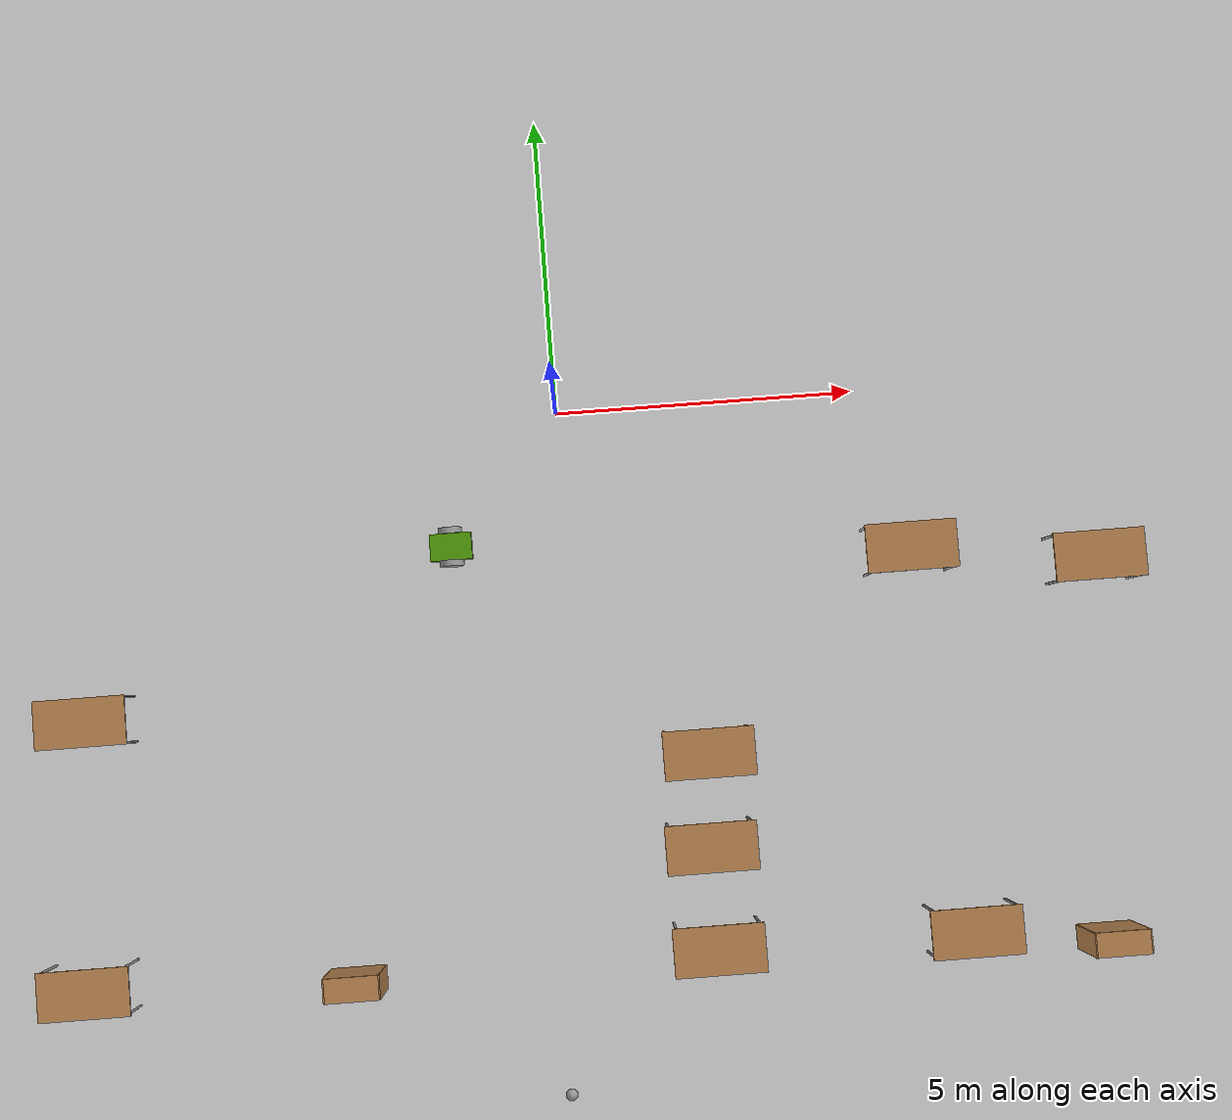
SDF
<sdf version="1.6">
 <world name="default">
  <model name="ground_plane">
   <static>1</static>
   <link name="link">
    <collision name="collision">
     <geometry><plane><normal>0 0 1</normal><size>100 100</size></plane></geometry>
     <surface>
      <contact><collide_bitmask>65535</collide_bitmask></contact>
      <friction><ode><mu>100</mu><mu2>50</mu2></ode></friction>
     </surface>
    </collision>
    <visual name="visual">
     <cast_shadows>0</cast_shadows>
     <geometry><plane><normal>0 0 1</normal><size>100 100</size></plane></geometry>
     <material>
      <script><uri>file://media/materials/scripts/gazebo.material</uri><name>Gazebo/Grey</name></script>
     </material>
    </visual>
   </link>
  </model>
  <model name="table">
   <static>1</static>
   <link name="link">
    <collision name="surface">
     <pose>0 0 1 0 -0 0</pose>
     <geometry><box><size>1.5 0.8 0.03</size></box></geometry>
     <surface><friction><ode><mu>0.6</mu><mu2>0.6</mu2></ode></friction></surface>
    </collision>
    <visual name="visual1">
     <pose>0 0 1 0 -0 0</pose>
     <geometry><box><size>1.5 0.8 0.03</size></box></geometry>
     <material>
      <script><uri>file://media/materials/scripts/gazebo.material</uri><name>Gazebo/Wood</name></script>
     </material>
    </visual>
    <collision name="front_left_leg">
     <pose>0.68 0.38 0.5 0 -0 0</pose>
     <geometry><cylinder><radius>0.02</radius><length>1</length></cylinder></geometry>
    </collision>
    <visual name="front_left_leg">
     <pose>0.68 0.38 0.5 0 -0 0</pose>
     <geometry><cylinder><radius>0.02</radius><length>1</length></cylinder></geometry>
     <material>
      <script><uri>file://media/materials/scripts/gazebo.material</uri><name>Gazebo/Grey</name></script>
     </material>
    </visual>
    <collision name="front_right_leg">
     <pose>0.68 -0.38 0.5 0 -0 0</pose>
     <geometry><cylinder><radius>0.02</radius><length>1</length></cylinder></geometry>
    </collision>
    <visual name="front_right_leg">
     <pose>0.68 -0.38 0.5 0 -0 0</pose>
     <geometry><cylinder><radius>0.02</radius><length>1</length></cylinder></geometry>
     <material>
      <script><uri>file://media/materials/scripts/gazebo.material</uri><name>Gazebo/Grey</name></script>
     </material>
    </visual>
    <collision name="back_right_leg">
     <pose>-0.68 -0.38 0.5 0 -0 0</pose>
     <geometry><cylinder><radius>0.02</radius><length>1</length></cylinder></geometry>
    </collision>
    <visual name="back_right_leg">
     <pose>-0.68 -0.38 0.5 0 -0 0</pose>
     <geometry><cylinder><radius>0.02</radius><length>1</length></cylinder></geometry>
     <material>
      <script><uri>file://media/materials/scripts/gazebo.material</uri><name>Gazebo/Grey</name></script>
     </material>
    </visual>
    <collision name="back_left_leg">
     <pose>-0.68 0.38 0.5 0 -0 0</pose>
     <geometry><cylinder><radius>0.02</radius><length>1</length></cylinder></geometry>
    </collision>
    <visual name="back_left_leg">
     <pose>-0.68 0.38 0.5 0 -0 0</pose>
     <geometry><cylinder><radius>0.02</radius><length>1</length></cylinder></geometry>
     <material>
      <script><uri>file://media/materials/scripts/gazebo.material</uri><name>Gazebo/Grey</name></script>
     </material>
    </visual>
   </link>
   <pose>-8.30672 -8.95805 0 0 -0 0</pose>
  </model>
  <model name="table_0">
   <static>1</static>
   <link name="link">
    <collision name="surface">
     <pose>0 0 1 0 -0 0</pose>
     <geometry><box><size>1.5 0.8 0.03</size></box></geometry>
     <surface><friction><ode><mu>0.6</mu><mu2>0.6</mu2></ode></friction></surface>
    </collision>
    <visual name="visual1">
     <pose>0 0 1 0 -0 0</pose>
     <geometry><box><size>1.5 0.8 0.03</size></box></geometry>
     <material>
      <script><uri>file://media/materials/scripts/gazebo.material</uri><name>Gazebo/Wood</name></script>
     </material>
    </visual>
    <collision name="front_left_leg">
     <pose>0.68 0.38 0.5 0 -0 0</pose>
     <geometry><cylinder><radius>0.02</radius><length>1</length></cylinder></geometry>
    </collision>
    <visual name="front_left_leg">
     <pose>0.68 0.38 0.5 0 -0 0</pose>
     <geometry><cylinder><radius>0.02</radius><length>1</length></cylinder></geometry>
     <material>
      <script><uri>file://media/materials/scripts/gazebo.material</uri><name>Gazebo/Grey</name></script>
     </material>
    </visual>
    <collision name="front_right_leg">
     <pose>0.68 -0.38 0.5 0 -0 0</pose>
     <geometry><cylinder><radius>0.02</radius><length>1</length></cylinder></geometry>
    </collision>
    <visual name="front_right_leg">
     <pose>0.68 -0.38 0.5 0 -0 0</pose>
     <geometry><cylinder><radius>0.02</radius><length>1</length></cylinder></geometry>
     <material>
      <script><uri>file://media/materials/scripts/gazebo.material</uri><name>Gazebo/Grey</name></script>
     </material>
    </visual>
    <collision name="back_right_leg">
     <pose>-0.68 -0.38 0.5 0 -0 0</pose>
     <geometry><cylinder><radius>0.02</radius><length>1</length></cylinder></geometry>
    </collision>
    <visual name="back_right_leg">
     <pose>-0.68 -0.38 0.5 0 -0 0</pose>
     <geometry><cylinder><radius>0.02</radius><length>1</length></cylinder></geometry>
     <material>
      <script><uri>file://media/materials/scripts/gazebo.material</uri><name>Gazebo/Grey</name></script>
     </material>
    </visual>
    <collision name="back_left_leg">
     <pose>-0.68 0.38 0.5 0 -0 0</pose>
     <geometry><cylinder><radius>0.02</radius><length>1</length></cylinder></geometry>
    </collision>
    <visual name="back_left_leg">
     <pose>-0.68 0.38 0.5 0 -0 0</pose>
     <geometry><cylinder><radius>0.02</radius><length>1</length></cylinder></geometry>
     <material>
      <script><uri>file://media/materials/scripts/gazebo.material</uri><name>Gazebo/Grey</name></script>
     </material>
    </visual>
   </link>
   <pose>-8.10475 -4.5906 0 0 -0 0</pose>
  </model>
  <model name="table_1">
   <static>1</static>
   <link name="link">
    <collision name="surface">
     <pose>0 0 1 0 -0 0</pose>
     <geometry><box><size>1.5 0.8 0.03</size></box></geometry>
     <surface><friction><ode><mu>0.6</mu><mu2>0.6</mu2></ode></friction></surface>
    </collision>
    <visual name="visual1">
     <pose>0 0 1 0 -0 0</pose>
     <geometry><box><size>1.5 0.8 0.03</size></box></geometry>
     <material>
      <script><uri>file://media/materials/scripts/gazebo.material</uri><name>Gazebo/Wood</name></script>
     </material>
    </visual>
    <collision name="front_left_leg">
     <pose>0.68 0.38 0.5 0 -0 0</pose>
     <geometry><cylinder><radius>0.02</radius><length>1</length></cylinder></geometry>
    </collision>
    <visual name="front_left_leg">
     <pose>0.68 0.38 0.5 0 -0 0</pose>
     <geometry><cylinder><radius>0.02</radius><length>1</length></cylinder></geometry>
     <material>
      <script><uri>file://media/materials/scripts/gazebo.material</uri><name>Gazebo/Grey</name></script>
     </material>
    </visual>
    <collision name="front_right_leg">
     <pose>0.68 -0.38 0.5 0 -0 0</pose>
     <geometry><cylinder><radius>0.02</radius><length>1</length></cylinder></geometry>
    </collision>
    <visual name="front_right_leg">
     <pose>0.68 -0.38 0.5 0 -0 0</pose>
     <geometry><cylinder><radius>0.02</radius><length>1</length></cylinder></geometry>
     <material>
      <script><uri>file://media/materials/scripts/gazebo.material</uri><name>Gazebo/Grey</name></script>
     </material>
    </visual>
    <collision name="back_right_leg">
     <pose>-0.68 -0.38 0.5 0 -0 0</pose>
     <geometry><cylinder><radius>0.02</radius><length>1</length></cylinder></geometry>
    </collision>
    <visual name="back_right_leg">
     <pose>-0.68 -0.38 0.5 0 -0 0</pose>
     <geometry><cylinder><radius>0.02</radius><length>1</length></cylinder></geometry>
     <material>
      <script><uri>file://media/materials/scripts/gazebo.material</uri><name>Gazebo/Grey</name></script>
     </material>
    </visual>
    <collision name="back_left_leg">
     <pose>-0.68 0.38 0.5 0 -0 0</pose>
     <geometry><cylinder><radius>0.02</radius><length>1</length></cylinder></geometry>
    </collision>
    <visual name="back_left_leg">
     <pose>-0.68 0.38 0.5 0 -0 0</pose>
     <geometry><cylinder><radius>0.02</radius><length>1</length></cylinder></geometry>
     <material>
      <script><uri>file://media/materials/scripts/gazebo.material</uri><name>Gazebo/Grey</name></script>
     </material>
    </visual>
   </link>
   <pose>1.98124 -9.04613 0 0 -0 0</pose>
  </model>
  <model name="table_2">
   <static>1</static>
   <link name="link">
    <collision name="surface">
     <pose>0 0 1 0 -0 0</pose>
     <geometry><box><size>1.5 0.8 0.03</size></box></geometry>
     <surface><friction><ode><mu>0.6</mu><mu2>0.6</mu2></ode></friction></surface>
    </collision>
    <visual name="visual1">
     <pose>0 0 1 0 -0 0</pose>
     <geometry><box><size>1.5 0.8 0.03</size></box></geometry>
     <material>
      <script><uri>file://media/materials/scripts/gazebo.material</uri><name>Gazebo/Wood</name></script>
     </material>
    </visual>
    <collision name="front_left_leg">
     <pose>0.68 0.38 0.5 0 -0 0</pose>
     <geometry><cylinder><radius>0.02</radius><length>1</length></cylinder></geometry>
    </collision>
    <visual name="front_left_leg">
     <pose>0.68 0.38 0.5 0 -0 0</pose>
     <geometry><cylinder><radius>0.02</radius><length>1</length></cylinder></geometry>
     <material>
      <script><uri>file://media/materials/scripts/gazebo.material</uri><name>Gazebo/Grey</name></script>
     </material>
    </visual>
    <collision name="front_right_leg">
     <pose>0.68 -0.38 0.5 0 -0 0</pose>
     <geometry><cylinder><radius>0.02</radius><length>1</length></cylinder></geometry>
    </collision>
    <visual name="front_right_leg">
     <pose>0.68 -0.38 0.5 0 -0 0</pose>
     <geometry><cylinder><radius>0.02</radius><length>1</length></cylinder></geometry>
     <material>
      <script><uri>file://media/materials/scripts/gazebo.material</uri><name>Gazebo/Grey</name></script>
     </material>
    </visual>
    <collision name="back_right_leg">
     <pose>-0.68 -0.38 0.5 0 -0 0</pose>
     <geometry><cylinder><radius>0.02</radius><length>1</length></cylinder></geometry>
    </collision>
    <visual name="back_right_leg">
     <pose>-0.68 -0.38 0.5 0 -0 0</pose>
     <geometry><cylinder><radius>0.02</radius><length>1</length></cylinder></geometry>
     <material>
      <script><uri>file://media/materials/scripts/gazebo.material</uri><name>Gazebo/Grey</name></script>
     </material>
    </visual>
    <collision name="back_left_leg">
     <pose>-0.68 0.38 0.5 0 -0 0</pose>
     <geometry><cylinder><radius>0.02</radius><length>1</length></cylinder></geometry>
    </collision>
    <visual name="back_left_leg">
     <pose>-0.68 0.38 0.5 0 -0 0</pose>
     <geometry><cylinder><radius>0.02</radius><length>1</length></cylinder></geometry>
     <material>
      <script><uri>file://media/materials/scripts/gazebo.material</uri><name>Gazebo/Grey</name></script>
     </material>
    </visual>
   </link>
   <pose>6.15776 -9.07965 0 0 -0 0</pose>
  </model>
  <model name="table_3">
   <static>1</static>
   <link name="link">
    <collision name="surface">
     <pose>0 0 1 0 -0 0</pose>
     <geometry><box><size>1.5 0.8 0.03</size></box></geometry>
     <surface><friction><ode><mu>0.6</mu><mu2>0.6</mu2></ode></friction></surface>
    </collision>
    <visual name="visual1">
     <pose>0 0 1 0 -0 0</pose>
     <geometry><box><size>1.5 0.8 0.03</size></box></geometry>
     <material>
      <script><uri>file://media/materials/scripts/gazebo.material</uri><name>Gazebo/Wood</name></script>
     </material>
    </visual>
    <collision name="front_left_leg">
     <pose>0.68 0.38 0.5 0 -0 0</pose>
     <geometry><cylinder><radius>0.02</radius><length>1</length></cylinder></geometry>
    </collision>
    <visual name="front_left_leg">
     <pose>0.68 0.38 0.5 0 -0 0</pose>
     <geometry><cylinder><radius>0.02</radius><length>1</length></cylinder></geometry>
     <material>
      <script><uri>file://media/materials/scripts/gazebo.material</uri><name>Gazebo/Grey</name></script>
     </material>
    </visual>
    <collision name="front_right_leg">
     <pose>0.68 -0.38 0.5 0 -0 0</pose>
     <geometry><cylinder><radius>0.02</radius><length>1</length></cylinder></geometry>
    </collision>
    <visual name="front_right_leg">
     <pose>0.68 -0.38 0.5 0 -0 0</pose>
     <geometry><cylinder><radius>0.02</radius><length>1</length></cylinder></geometry>
     <material>
      <script><uri>file://media/materials/scripts/gazebo.material</uri><name>Gazebo/Grey</name></script>
     </material>
    </visual>
    <collision name="back_right_leg">
     <pose>-0.68 -0.38 0.5 0 -0 0</pose>
     <geometry><cylinder><radius>0.02</radius><length>1</length></cylinder></geometry>
    </collision>
    <visual name="back_right_leg">
     <pose>-0.68 -0.38 0.5 0 -0 0</pose>
     <geometry><cylinder><radius>0.02</radius><length>1</length></cylinder></geometry>
     <material>
      <script><uri>file://media/materials/scripts/gazebo.material</uri><name>Gazebo/Grey</name></script>
     </material>
    </visual>
    <collision name="back_left_leg">
     <pose>-0.68 0.38 0.5 0 -0 0</pose>
     <geometry><cylinder><radius>0.02</radius><length>1</length></cylinder></geometry>
    </collision>
    <visual name="back_left_leg">
     <pose>-0.68 0.38 0.5 0 -0 0</pose>
     <geometry><cylinder><radius>0.02</radius><length>1</length></cylinder></geometry>
     <material>
      <script><uri>file://media/materials/scripts/gazebo.material</uri><name>Gazebo/Grey</name></script>
     </material>
    </visual>
   </link>
   <pose>8.70084 -3.13476 0 0 -0 0</pose>
  </model>
  <model name="table_4">
   <static>1</static>
   <link name="link">
    <collision name="surface">
     <pose>0 0 1 0 -0 0</pose>
     <geometry><box><size>1.5 0.8 0.03</size></box></geometry>
     <surface><friction><ode><mu>0.6</mu><mu2>0.6</mu2></ode></friction></surface>
    </collision>
    <visual name="visual1">
     <pose>0 0 1 0 -0 0</pose>
     <geometry><box><size>1.5 0.8 0.03</size></box></geometry>
     <material>
      <script><uri>file://media/materials/scripts/gazebo.material</uri><name>Gazebo/Wood</name></script>
     </material>
    </visual>
    <collision name="front_left_leg">
     <pose>0.68 0.38 0.5 0 -0 0</pose>
     <geometry><cylinder><radius>0.02</radius><length>1</length></cylinder></geometry>
    </collision>
    <visual name="front_left_leg">
     <pose>0.68 0.38 0.5 0 -0 0</pose>
     <geometry><cylinder><radius>0.02</radius><length>1</length></cylinder></geometry>
     <material>
      <script><uri>file://media/materials/scripts/gazebo.material</uri><name>Gazebo/Grey</name></script>
     </material>
    </visual>
    <collision name="front_right_leg">
     <pose>0.68 -0.38 0.5 0 -0 0</pose>
     <geometry><cylinder><radius>0.02</radius><length>1</length></cylinder></geometry>
    </collision>
    <visual name="front_right_leg">
     <pose>0.68 -0.38 0.5 0 -0 0</pose>
     <geometry><cylinder><radius>0.02</radius><length>1</length></cylinder></geometry>
     <material>
      <script><uri>file://media/materials/scripts/gazebo.material</uri><name>Gazebo/Grey</name></script>
     </material>
    </visual>
    <collision name="back_right_leg">
     <pose>-0.68 -0.38 0.5 0 -0 0</pose>
     <geometry><cylinder><radius>0.02</radius><length>1</length></cylinder></geometry>
    </collision>
    <visual name="back_right_leg">
     <pose>-0.68 -0.38 0.5 0 -0 0</pose>
     <geometry><cylinder><radius>0.02</radius><length>1</length></cylinder></geometry>
     <material>
      <script><uri>file://media/materials/scripts/gazebo.material</uri><name>Gazebo/Grey</name></script>
     </material>
    </visual>
    <collision name="back_left_leg">
     <pose>-0.68 0.38 0.5 0 -0 0</pose>
     <geometry><cylinder><radius>0.02</radius><length>1</length></cylinder></geometry>
    </collision>
    <visual name="back_left_leg">
     <pose>-0.68 0.38 0.5 0 -0 0</pose>
     <geometry><cylinder><radius>0.02</radius><length>1</length></cylinder></geometry>
     <material>
      <script><uri>file://media/materials/scripts/gazebo.material</uri><name>Gazebo/Grey</name></script>
     </material>
    </visual>
   </link>
   <pose>5.64354 -2.758 0 0 -0 0</pose>
  </model>
  <model name="bookshelf">
   <static>1</static>
   <link name="link">
    <inertial><mass>1</mass></inertial>
    <collision name="back">
     <pose>0 0.005 0.6 0 -0 0</pose>
     <geometry><box><size>0.9 0.01 1.2</size></box></geometry>
    </collision>
    <visual name="visual1">
     <pose>0 0.005 0.6 0 -0 0</pose>
     <geometry><box><size>0.9 0.01 1.2</size></box></geometry>
     <material>
      <script><uri>file://media/materials/scripts/gazebo.material</uri><name>Gazebo/Wood</name></script>
     </material>
    </visual>
    <collision name="left_side">
     <pose>0.45 -0.195 0.6 0 -0 0</pose>
     <geometry><box><size>0.02 0.4 1.2</size></box></geometry>
    </collision>
    <visual name="visual2">
     <pose>0.45 -0.195 0.6 0 -0 0</pose>
     <geometry><box><size>0.02 0.4 1.2</size></box></geometry>
     <material>
      <script><uri>file://media/materials/scripts/gazebo.material</uri><name>Gazebo/Wood</name></script>
     </material>
    </visual>
    <collision name="right_side">
     <pose>-0.45 -0.195 0.6 0 -0 0</pose>
     <geometry><box><size>0.02 0.4 1.2</size></box></geometry>
    </collision>
    <visual name="visual3">
     <pose>-0.45 -0.195 0.6 0 -0 0</pose>
     <geometry><box><size>0.02 0.4 1.2</size></box></geometry>
     <material>
      <script><uri>file://media/materials/scripts/gazebo.material</uri><name>Gazebo/Wood</name></script>
     </material>
    </visual>
    <collision name="bottom">
     <pose>0 -0.195 0.03 0 -0 0</pose>
     <geometry><box><size>0.88 0.4 0.06</size></box></geometry>
    </collision>
    <visual name="visual4">
     <pose>0 -0.195 0.03 0 -0 0</pose>
     <geometry><box><size>0.88 0.4 0.06</size></box></geometry>
     <material>
      <script><uri>file://media/materials/scripts/gazebo.material</uri><name>Gazebo/Wood</name></script>
     </material>
    </visual>
    <collision name="top">
     <pose>0 -0.195 1.19 0 -0 0</pose>
     <geometry><box><size>0.88 0.4 0.02</size></box></geometry>
    </collision>
    <visual name="visual5">
     <pose>0 -0.195 1.19 0 -0 0</pose>
     <geometry><box><size>0.88 0.4 0.02</size></box></geometry>
     <material>
      <script><uri>file://media/materials/scripts/gazebo.material</uri><name>Gazebo/Wood</name></script>
     </material>
    </visual>
    <collision name="low_shelf">
     <pose>0 -0.195 0.43 0 -0 0</pose>
     <geometry><box><size>0.88 0.4 0.02</size></box></geometry>
    </collision>
    <visual name="visual6">
     <pose>0 -0.195 0.43 0 -0 0</pose>
     <geometry><box><size>0.88 0.4 0.02</size></box></geometry>
     <material>
      <script><uri>file://media/materials/scripts/gazebo.material</uri><name>Gazebo/Wood</name></script>
     </material>
    </visual>
    <collision name="high_shelf">
     <pose>0 -0.195 0.8 0 -0 0</pose>
     <geometry><box><size>0.88 0.4 0.02</size></box></geometry>
    </collision>
    <visual name="visual7">
     <pose>0 -0.195 0.8 0 -0 0</pose>
     <geometry><box><size>0.88 0.4 0.02</size></box></geometry>
     <material>
      <script><uri>file://media/materials/scripts/gazebo.material</uri><name>Gazebo/Wood</name></script>
     </material>
    </visual>
   </link>
   <pose>8.43876 -9.21619 0 0 -0 0</pose>
  </model>
  <model name="bookshelf_0">
   <static>1</static>
   <link name="link">
    <inertial><mass>1</mass></inertial>
    <collision name="back">
     <pose>0 0.005 0.6 0 -0 0</pose>
     <geometry><box><size>0.9 0.01 1.2</size></box></geometry>
    </collision>
    <visual name="visual1">
     <pose>0 0.005 0.6 0 -0 0</pose>
     <geometry><box><size>0.9 0.01 1.2</size></box></geometry>
     <material>
      <script><uri>file://media/materials/scripts/gazebo.material</uri><name>Gazebo/Wood</name></script>
     </material>
    </visual>
    <collision name="left_side">
     <pose>0.45 -0.195 0.6 0 -0 0</pose>
     <geometry><box><size>0.02 0.4 1.2</size></box></geometry>
    </collision>
    <visual name="visual2">
     <pose>0.45 -0.195 0.6 0 -0 0</pose>
     <geometry><box><size>0.02 0.4 1.2</size></box></geometry>
     <material>
      <script><uri>file://media/materials/scripts/gazebo.material</uri><name>Gazebo/Wood</name></script>
     </material>
    </visual>
    <collision name="right_side">
     <pose>-0.45 -0.195 0.6 0 -0 0</pose>
     <geometry><box><size>0.02 0.4 1.2</size></box></geometry>
    </collision>
    <visual name="visual3">
     <pose>-0.45 -0.195 0.6 0 -0 0</pose>
     <geometry><box><size>0.02 0.4 1.2</size></box></geometry>
     <material>
      <script><uri>file://media/materials/scripts/gazebo.material</uri><name>Gazebo/Wood</name></script>
     </material>
    </visual>
    <collision name="bottom">
     <pose>0 -0.195 0.03 0 -0 0</pose>
     <geometry><box><size>0.88 0.4 0.06</size></box></geometry>
    </collision>
    <visual name="visual4">
     <pose>0 -0.195 0.03 0 -0 0</pose>
     <geometry><box><size>0.88 0.4 0.06</size></box></geometry>
     <material>
      <script><uri>file://media/materials/scripts/gazebo.material</uri><name>Gazebo/Wood</name></script>
     </material>
    </visual>
    <collision name="top">
     <pose>0 -0.195 1.19 0 -0 0</pose>
     <geometry><box><size>0.88 0.4 0.02</size></box></geometry>
    </collision>
    <visual name="visual5">
     <pose>0 -0.195 1.19 0 -0 0</pose>
     <geometry><box><size>0.88 0.4 0.02</size></box></geometry>
     <material>
      <script><uri>file://media/materials/scripts/gazebo.material</uri><name>Gazebo/Wood</name></script>
     </material>
    </visual>
    <collision name="low_shelf">
     <pose>0 -0.195 0.43 0 -0 0</pose>
     <geometry><box><size>0.88 0.4 0.02</size></box></geometry>
    </collision>
    <visual name="visual6">
     <pose>0 -0.195 0.43 0 -0 0</pose>
     <geometry><box><size>0.88 0.4 0.02</size></box></geometry>
     <material>
      <script><uri>file://media/materials/scripts/gazebo.material</uri><name>Gazebo/Wood</name></script>
     </material>
    </visual>
    <collision name="high_shelf">
     <pose>0 -0.195 0.8 0 -0 0</pose>
     <geometry><box><size>0.88 0.4 0.02</size></box></geometry>
    </collision>
    <visual name="visual7">
     <pose>0 -0.195 0.8 0 -0 0</pose>
     <geometry><box><size>0.88 0.4 0.02</size></box></geometry>
     <material>
      <script><uri>file://media/materials/scripts/gazebo.material</uri><name>Gazebo/Wood</name></script>
     </material>
    </visual>
   </link>
   <pose>-3.97087 -8.98747 0 0 -0 0</pose>
  </model>
  <model name="table_10">
   <static>1</static>
   <link name="link">
    <collision name="surface">
     <pose>0 0 1 0 -0 0</pose>
     <geometry><box><size>1.5 0.8 0.03</size></box></geometry>
     <surface><friction><ode><mu>0.6</mu><mu2>0.6</mu2></ode></friction></surface>
    </collision>
    <visual name="visual1">
     <pose>0 0 1 0 -0 0</pose>
     <geometry><box><size>1.5 0.8 0.03</size></box></geometry>
     <material>
      <script><uri>file://media/materials/scripts/gazebo.material</uri><name>Gazebo/Wood</name></script>
     </material>
    </visual>
    <collision name="front_left_leg">
     <pose>0.68 0.38 0.5 0 -0 0</pose>
     <geometry><cylinder><radius>0.02</radius><length>1</length></cylinder></geometry>
    </collision>
    <visual name="front_left_leg">
     <pose>0.68 0.38 0.5 0 -0 0</pose>
     <geometry><cylinder><radius>0.02</radius><length>1</length></cylinder></geometry>
     <material>
      <script><uri>file://media/materials/scripts/gazebo.material</uri><name>Gazebo/Grey</name></script>
     </material>
    </visual>
    <collision name="front_right_leg">
     <pose>0.68 -0.38 0.5 0 -0 0</pose>
     <geometry><cylinder><radius>0.02</radius><length>1</length></cylinder></geometry>
    </collision>
    <visual name="front_right_leg">
     <pose>0.68 -0.38 0.5 0 -0 0</pose>
     <geometry><cylinder><radius>0.02</radius><length>1</length></cylinder></geometry>
     <material>
      <script><uri>file://media/materials/scripts/gazebo.material</uri><name>Gazebo/Grey</name></script>
     </material>
    </visual>
    <collision name="back_right_leg">
     <pose>-0.68 -0.38 0.5 0 -0 0</pose>
     <geometry><cylinder><radius>0.02</radius><length>1</length></cylinder></geometry>
    </collision>
    <visual name="back_right_leg">
     <pose>-0.68 -0.38 0.5 0 -0 0</pose>
     <geometry><cylinder><radius>0.02</radius><length>1</length></cylinder></geometry>
     <material>
      <script><uri>file://media/materials/scripts/gazebo.material</uri><name>Gazebo/Grey</name></script>
     </material>
    </visual>
    <collision name="back_left_leg">
     <pose>-0.68 0.38 0.5 0 -0 0</pose>
     <geometry><cylinder><radius>0.02</radius><length>1</length></cylinder></geometry>
    </collision>
    <visual name="back_left_leg">
     <pose>-0.68 0.38 0.5 0 -0 0</pose>
     <geometry><cylinder><radius>0.02</radius><length>1</length></cylinder></geometry>
     <material>
      <script><uri>file://media/materials/scripts/gazebo.material</uri><name>Gazebo/Grey</name></script>
     </material>
    </visual>
   </link>
   <pose>2.06788 -5.87289 0 0 -0 0</pose>
  </model>
  <model name="table_11">
   <static>1</static>
   <link name="link">
    <collision name="surface">
     <pose>0 0 1 0 -0 0</pose>
     <geometry><box><size>1.5 0.8 0.03</size></box></geometry>
     <surface><friction><ode><mu>0.6</mu><mu2>0.6</mu2></ode></friction></surface>
    </collision>
    <visual name="visual1">
     <pose>0 0 1 0 -0 0</pose>
     <geometry><box><size>1.5 0.8 0.03</size></box></geometry>
     <material>
      <script><uri>file://media/materials/scripts/gazebo.material</uri><name>Gazebo/Wood</name></script>
     </material>
    </visual>
    <collision name="front_left_leg">
     <pose>0.68 0.38 0.5 0 -0 0</pose>
     <geometry><cylinder><radius>0.02</radius><length>1</length></cylinder></geometry>
    </collision>
    <visual name="front_left_leg">
     <pose>0.68 0.38 0.5 0 -0 0</pose>
     <geometry><cylinder><radius>0.02</radius><length>1</length></cylinder></geometry>
     <material>
      <script><uri>file://media/materials/scripts/gazebo.material</uri><name>Gazebo/Grey</name></script>
     </material>
    </visual>
    <collision name="front_right_leg">
     <pose>0.68 -0.38 0.5 0 -0 0</pose>
     <geometry><cylinder><radius>0.02</radius><length>1</length></cylinder></geometry>
    </collision>
    <visual name="front_right_leg">
     <pose>0.68 -0.38 0.5 0 -0 0</pose>
     <geometry><cylinder><radius>0.02</radius><length>1</length></cylinder></geometry>
     <material>
      <script><uri>file://media/materials/scripts/gazebo.material</uri><name>Gazebo/Grey</name></script>
     </material>
    </visual>
    <collision name="back_right_leg">
     <pose>-0.68 -0.38 0.5 0 -0 0</pose>
     <geometry><cylinder><radius>0.02</radius><length>1</length></cylinder></geometry>
    </collision>
    <visual name="back_right_leg">
     <pose>-0.68 -0.38 0.5 0 -0 0</pose>
     <geometry><cylinder><radius>0.02</radius><length>1</length></cylinder></geometry>
     <material>
      <script><uri>file://media/materials/scripts/gazebo.material</uri><name>Gazebo/Grey</name></script>
     </material>
    </visual>
    <collision name="back_left_leg">
     <pose>-0.68 0.38 0.5 0 -0 0</pose>
     <geometry><cylinder><radius>0.02</radius><length>1</length></cylinder></geometry>
    </collision>
    <visual name="back_left_leg">
     <pose>-0.68 0.38 0.5 0 -0 0</pose>
     <geometry><cylinder><radius>0.02</radius><length>1</length></cylinder></geometry>
     <material>
      <script><uri>file://media/materials/scripts/gazebo.material</uri><name>Gazebo/Grey</name></script>
     </material>
    </visual>
   </link>
   <pose>1.98713 -7.398 0 0 -0 0</pose>
  </model>
  <model name="robot">
   <link name="link_0">
    <inertial>
     <mass>1</mass>
     <inertia>
      <ixx>0.166667</ixx>
      <ixy>0</ixy>
      <ixz>0</ixz>
      <iyy>0.166667</iyy>
      <iyz>0</iyz>
      <izz>0.166667</izz>
     </inertia>
    </inertial>
    <visual name="visual">
     <geometry><box><size>0.7 0.45 0.2</size></box></geometry>
     <material>
      <lighting>1</lighting>
      <script><uri>file://media/materials/scripts/gazebo.material</uri><name>Gazebo/Grey</name></script>
      <shader type="pixel"><normal_map>__default__</normal_map></shader>
      <ambient>0.306 0.604 0.024 1</ambient>
      <diffuse>0.306 0.604 0.024 1</diffuse>
      <specular>0.306 0.604 0.024 1</specular>
      <emissive>0 0 0 1</emissive>
     </material>
    </visual>
    <collision name="collision">
     <geometry><box><size>0.7 0.45 0.2</size></box></geometry>
     <surface>
      <friction>
       <ode><mu>1</mu><mu2>1</mu2><fdir1>0 0 0</fdir1><slip1>0</slip1><slip2>0</slip2></ode>
       <torsional>
        <coefficient>1</coefficient>
        <patch_radius>0</patch_radius>
        <surface_radius>0</surface_radius>
        <use_patch_radius>1</use_patch_radius>
        <ode><slip>0</slip></ode>
       </torsional>
      </friction>
      <bounce><restitution_coefficient>0</restitution_coefficient><threshold>1e+06</threshold></bounce>
      <contact>
       <collide_without_contact>0</collide_without_contact>
       <collide_without_contact_bitmask>1</collide_without_contact_bitmask>
       <collide_bitmask>1</collide_bitmask>
       <ode>
        <soft_cfm>0</soft_cfm>
        <soft_erp>0.2</soft_erp>
        <kp>1e+13</kp>
        <kd>1</kd>
        <max_vel>0.01</max_vel>
        <min_depth>0</min_depth>
       </ode>
       <bullet>
        <split_impulse>1</split_impulse>
        <split_impulse_penetration_threshold>-0.01</split_impulse_penetration_threshold>
        <soft_cfm>0</soft_cfm>
        <soft_erp>0.2</soft_erp>
        <kp>1e+13</kp>
        <kd>1</kd>
       </bullet>
      </contact>
     </surface>
    </collision>
   </link>
   <link name="link_1">
    <inertial>
     <mass>1</mass>
     <inertia><ixx>0.145833</ixx><ixy>0</ixy><ixz>0</ixz><iyy>0.145833</iyy><iyz>0</iyz><izz>0.125</izz></inertia>
    </inertial>
    <pose>-0 -0.275019 0 1.5707 -0 0</pose>
    <visual name="visual">
     <geometry><cylinder><radius>0.2</radius><length>0.1</length></cylinder></geometry>
     <material>
      <lighting>1</lighting>
      <script><uri>file://media/materials/scripts/gazebo.material</uri><name>Gazebo/Grey</name></script>
      <shader type="pixel"><normal_map>__default__</normal_map></shader>
      <ambient>0.008 0.008 0.008 1</ambient>
      <diffuse>0 0 0 1</diffuse>
      <specular>0 0 0 1</specular>
      <emissive>0 0 0 1</emissive>
     </material>
    </visual>
    <collision name="collision">
     <geometry><cylinder><radius>0.2</radius><length>0.1</length></cylinder></geometry>
     <surface>
      <friction>
       <ode><mu>1</mu><mu2>1</mu2><fdir1>0 0 0</fdir1><slip1>0</slip1><slip2>0</slip2></ode>
       <torsional>
        <coefficient>1</coefficient>
        <patch_radius>0</patch_radius>
        <surface_radius>0</surface_radius>
        <use_patch_radius>1</use_patch_radius>
        <ode><slip>0</slip></ode>
       </torsional>
      </friction>
      <bounce><restitution_coefficient>0</restitution_coefficient><threshold>1e+06</threshold></bounce>
      <contact>
       <collide_without_contact>0</collide_without_contact>
       <collide_without_contact_bitmask>1</collide_without_contact_bitmask>
       <collide_bitmask>1</collide_bitmask>
       <ode>
        <soft_cfm>0</soft_cfm>
        <soft_erp>0.2</soft_erp>
        <kp>1e+13</kp>
        <kd>1</kd>
        <max_vel>0.01</max_vel>
        <min_depth>0</min_depth>
       </ode>
       <bullet>
        <split_impulse>1</split_impulse>
        <split_impulse_penetration_threshold>-0.01</split_impulse_penetration_threshold>
        <soft_cfm>0</soft_cfm>
        <soft_erp>0.2</soft_erp>
        <kp>1e+13</kp>
        <kd>1</kd>
       </bullet>
      </contact>
     </surface>
    </collision>
   </link>
   <link name="link_1_clone">
    <inertial>
     <mass>1</mass>
     <inertia><ixx>0.145833</ixx><ixy>0</ixy><ixz>0</ixz><iyy>0.145833</iyy><iyz>0</iyz><izz>0.125</izz></inertia>
    </inertial>
    <pose>-0 0.27502 0 1.5707 -0 0</pose>
    <visual name="visual">
     <geometry><cylinder><radius>0.2</radius><length>0.1</length></cylinder></geometry>
     <material>
      <lighting>1</lighting>
      <script><uri>file://media/materials/scripts/gazebo.material</uri><name>Gazebo/Grey</name></script>
      <shader type="pixel"><normal_map>__default__</normal_map></shader>
      <ambient>0 0 0 1</ambient>
      <diffuse>0 0 0 1</diffuse>
      <specular>0 0 0 1</specular>
      <emissive>0.008 0.008 0.008 1</emissive>
     </material>
    </visual>
    <collision name="collision">
     <geometry><cylinder><radius>0.2</radius><length>0.1</length></cylinder></geometry>
     <surface>
      <friction>
       <ode><mu>1</mu><mu2>1</mu2><fdir1>0 0 0</fdir1><slip1>0</slip1><slip2>0</slip2></ode>
       <torsional>
        <coefficient>1</coefficient>
        <patch_radius>0</patch_radius>
        <surface_radius>0</surface_radius>
        <use_patch_radius>1</use_patch_radius>
        <ode><slip>0</slip></ode>
       </torsional>
      </friction>
      <bounce><restitution_coefficient>0</restitution_coefficient><threshold>1e+06</threshold></bounce>
      <contact>
       <collide_without_contact>0</collide_without_contact>
       <collide_without_contact_bitmask>1</collide_without_contact_bitmask>
       <collide_bitmask>1</collide_bitmask>
       <ode>
        <soft_cfm>0</soft_cfm>
        <soft_erp>0.2</soft_erp>
        <kp>1e+13</kp>
        <kd>1</kd>
        <max_vel>0.01</max_vel>
        <min_depth>0</min_depth>
       </ode>
       <bullet>
        <split_impulse>1</split_impulse>
        <split_impulse_penetration_threshold>-0.01</split_impulse_penetration_threshold>
        <soft_cfm>0</soft_cfm>
        <soft_erp>0.2</soft_erp>
        <kp>1e+13</kp>
        <kd>1</kd>
       </bullet>
      </contact>
     </surface>
    </collision>
   </link>
   <joint name="link_0_JOINT_0" type="revolute">
    <parent>link_0</parent>
    <child>link_1_clone</child>
    <axis>
     <xyz>0 0 1</xyz>
     <limit>
      <lower>-1.79769e+308</lower>
      <upper>1.79769e+308</upper>
      <effort>-1</effort>
      <velocity>-1</velocity>
     </limit>
     <dynamics>
      <spring_reference>0</spring_reference>
      <spring_stiffness>0</spring_stiffness>
      <damping>0</damping>
     </dynamics>
     <use_parent_model_frame>0</use_parent_model_frame>
    </axis>
    <physics>
     <ode><limit><cfm>0</cfm><erp>0.2</erp></limit><suspension><cfm>0</cfm><erp>0.2</erp></suspension></ode>
    </physics>
   </joint>
   <joint name="link_0_JOINT_1" type="revolute">
    <parent>link_0</parent>
    <child>link_1</child>
    <axis>
     <xyz>0 0 1</xyz>
     <limit>
      <lower>-1.79769e+308</lower>
      <upper>1.79769e+308</upper>
      <effort>-1</effort>
      <velocity>-1</velocity>
     </limit>
     <dynamics>
      <spring_reference>0</spring_reference>
      <spring_stiffness>0</spring_stiffness>
      <damping>0</damping>
     </dynamics>
     <use_parent_model_frame>0</use_parent_model_frame>
    </axis>
    <physics>
     <ode><limit><cfm>0</cfm><erp>0.2</erp></limit><suspension><cfm>0</cfm><erp>0.2</erp></suspension></ode>
    </physics>
   </joint>
   <static>0</static>
   <pose>-1.92589 -2.13069 0.200005 0 -0.000255 0</pose>
  </model>
  <model name="whiteball">
   <link name="link">
    <inertial>
     <mass>1</mass>
     <inertia><ixx>0.1</ixx><ixy>0</ixy><ixz>0</ixz><iyy>0.1</iyy><iyz>0</iyz><izz>0.1</izz></inertia>
    </inertial>
    <visual name="visual">
     <geometry><sphere><radius>0.1</radius></sphere></geometry>
     <material>
      <script><name>Gazebo/Grey</name><uri>file://media/materials/scripts/gazebo.material</uri></script>
      <shader type="pixel"><normal_map>__default__</normal_map></shader>
      <ambient>1 1 1 1</ambient>
      <diffuse>1 1 1 1</diffuse>
      <specular>1 1 1 1</specular>
      <emissive>1 1 1 1</emissive>
     </material>
    </visual>
    <collision name="collision">
     <geometry><sphere><radius>0.1</radius></sphere></geometry>
     <surface>
      <friction>
       <ode><mu>1</mu><mu2>1</mu2><fdir1>0 0 0</fdir1><slip1>0</slip1><slip2>0</slip2></ode>
       <torsional>
        <coefficient>1</coefficient>
        <patch_radius>0</patch_radius>
        <surface_radius>0</surface_radius>
        <use_patch_radius>1</use_patch_radius>
        <ode><slip>0</slip></ode>
       </torsional>
      </friction>
      <bounce><restitution_coefficient>0</restitution_coefficient><threshold>1e+06</threshold></bounce>
      <contact>
       <collide_without_contact>0</collide_without_contact>
       <collide_without_contact_bitmask>1</collide_without_contact_bitmask>
       <collide_bitmask>1</collide_bitmask>
       <ode>
        <soft_cfm>0</soft_cfm>
        <soft_erp>0.2</soft_erp>
        <kp>1e+13</kp>
        <kd>1</kd>
        <max_vel>0.01</max_vel>
        <min_depth>0</min_depth>
       </ode>
       <bullet>
        <split_impulse>1</split_impulse>
        <split_impulse_penetration_threshold>-0.01</split_impulse_penetration_threshold>
        <soft_cfm>0</soft_cfm>
        <soft_erp>0.2</soft_erp>
        <kp>1e+13</kp>
        <kd>1</kd>
       </bullet>
      </contact>
     </surface>
    </collision>
   </link>
   <static>0</static>
   <pose>-0.5965 -11.3298 0.1 0 -0 0</pose>
  </model>
 </world>
</sdf>
